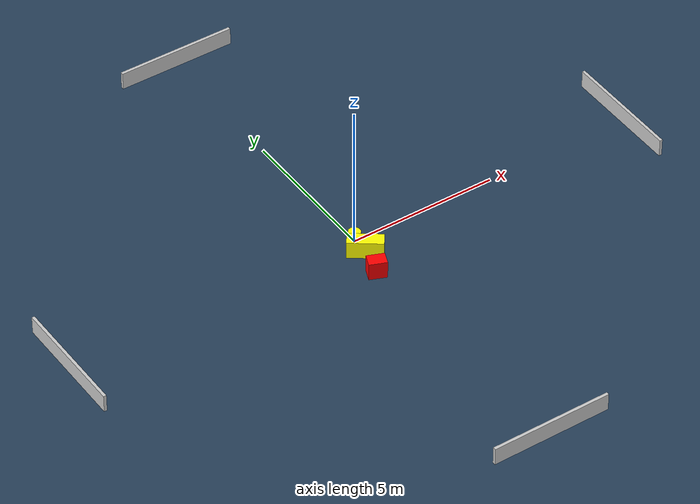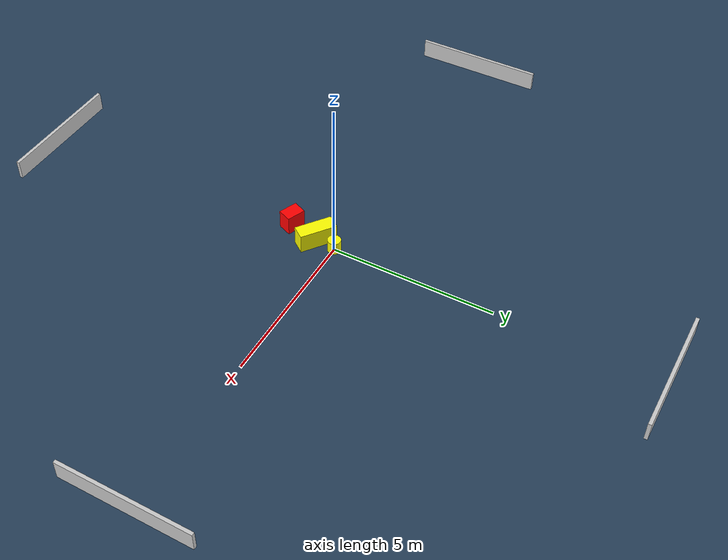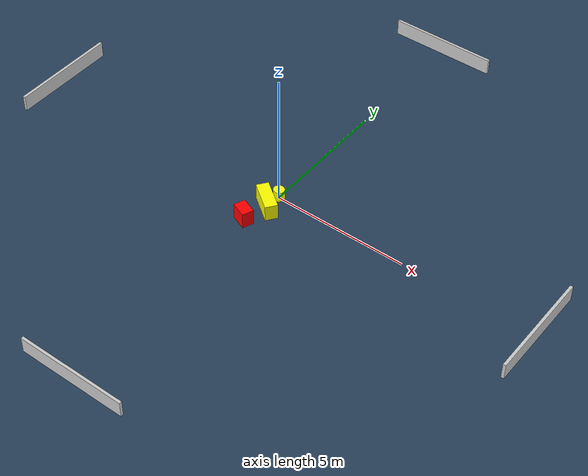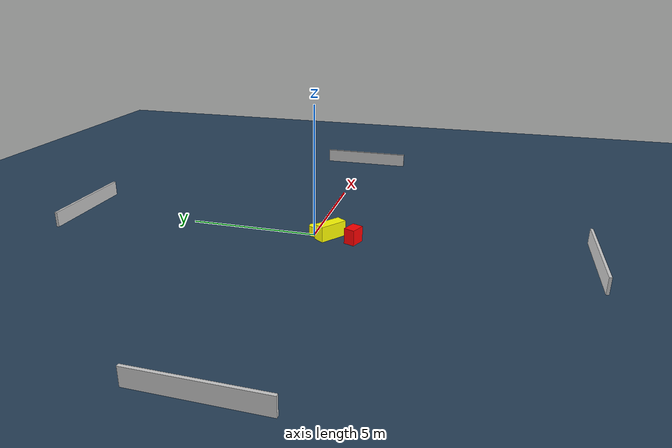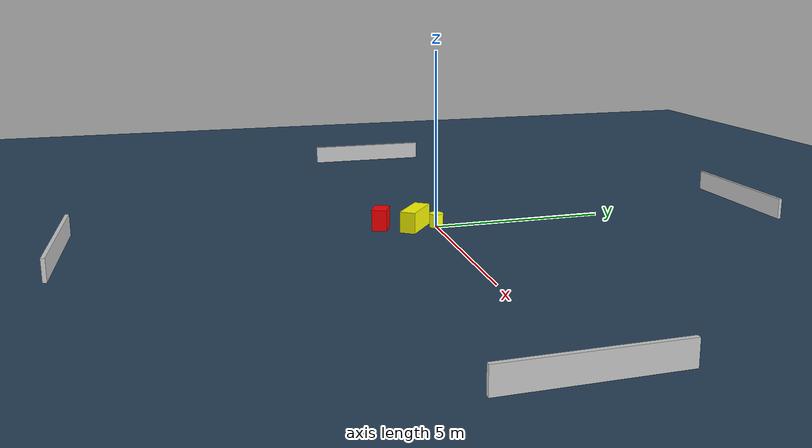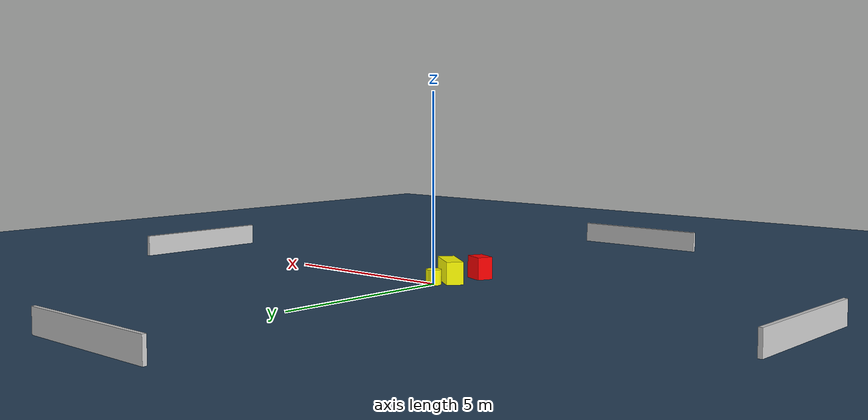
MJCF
<?xml version="1.0" ?>
<mujoco model="generated_environment">
  <option timestep="0.01" integrator="RK4" cone="elliptic"/>
  <default>
    <geom density="1"/>
  </default>
  <asset>
    <texture builtin="gradient" height="3072" name="skybox" rgb1="0.3 0.5 0.7" rgb2="0 0 0" type="skybox" width="512"/>
    <texture builtin="checker" height="300" name="groundplane" rgb1="0.2 0.3 0.4" rgb2="0.1 0.2 0.3" type="2d" width="300"/>
    <material name="groundplane" reflectance="0.2" texrepeat="5 5" texture="groundplane"/>
  </asset>
  <worldbody>
    <light dir="0 0 -1" directional="true" pos="0 0 1.5"/>
    <geom condim="3" friction="0.5 0.005 0.001" material="groundplane" name="floor" pos="0 0 0" size="0 0 0.05" type="plane"/>
    <body name="walls">
      <geom name="wall_1" condim="4" pos="-10.0 0.0 0.3" rgba="0.800000011920929 0.800000011920929 0.800000011920929 1.0" size="0.05 2.0 0.3" type="box"/>
      <geom name="wall_2" condim="4" pos="10.0 0.0 0.3" rgba="0.800000011920929 0.800000011920929 0.800000011920929 1.0" size="0.05 2.0 0.3" type="box"/>
      <geom name="wall_3" condim="4" pos="0.0 -10.0 0.3" rgba="0.800000011920929 0.800000011920929 0.800000011920929 1.0" size="2.0 0.05 0.3" type="box"/>
      <geom name="wall_4" condim="4" pos="0.0 10.0 0.3" rgba="0.800000011920929 0.800000011920929 0.800000011920929 1.0" size="2.0 0.05 0.3" type="box"/>
    </body>
    <body name="robot">
      <joint name="joint_x" type="slide" pos="0 0 0" axis="1 0 0"/>
      <joint name="joint_y" type="slide" pos="0 0 0" axis="0 1 0"/>
      <geom name="robot" type="cylinder" pos="0.0 0.0 0.2" size="0.2 0.2 0.0" mass="5.0" friction="1.0 0.005 0.0001" condim="4" rgba="1.0 1.0 0.0 1.0"/>
    </body>
    <body name="obstacle_1_movable">
      <geom name="obstacle_1_movable" condim="4" pos="-0.027676992988551696 -0.6267751318140935 0.3" euler="0 0 53.61342043862862" friction="0.0 0.005 0.001" rgba="1.0 1.0 0.0 1.0" size="0.2229887963937672 0.5691576843985093 0.3" type="box" mass="0.1"/>
      <joint type="free"/>
    </body>
    <body name="obstacle_2_static">
      <geom name="obstacle_2_static" condim="4" pos="-0.259797300543922 -1.5644799918780803 0.3" euler="0 0 157.90703497800376" friction="0.0 0.005 0.001" rgba="1.0 0.0 0.0 1.0" size="0.2914774429653413 0.21303779657854935 0.3" type="box"/>
    </body>
  </worldbody>
  <actuator>
    <motor name="actuator_x" joint="joint_x" gear="1" ctrlrange="-1 1"/>
    <motor name="actuator_y" joint="joint_y" gear="1" ctrlrange="-1 1"/>
  </actuator>
</mujoco>
